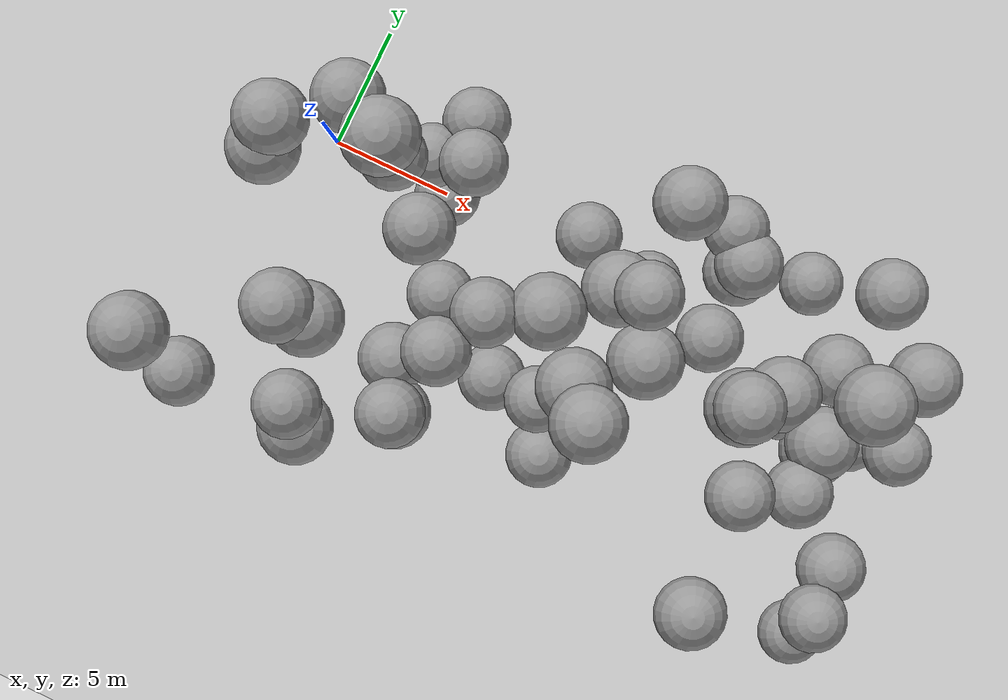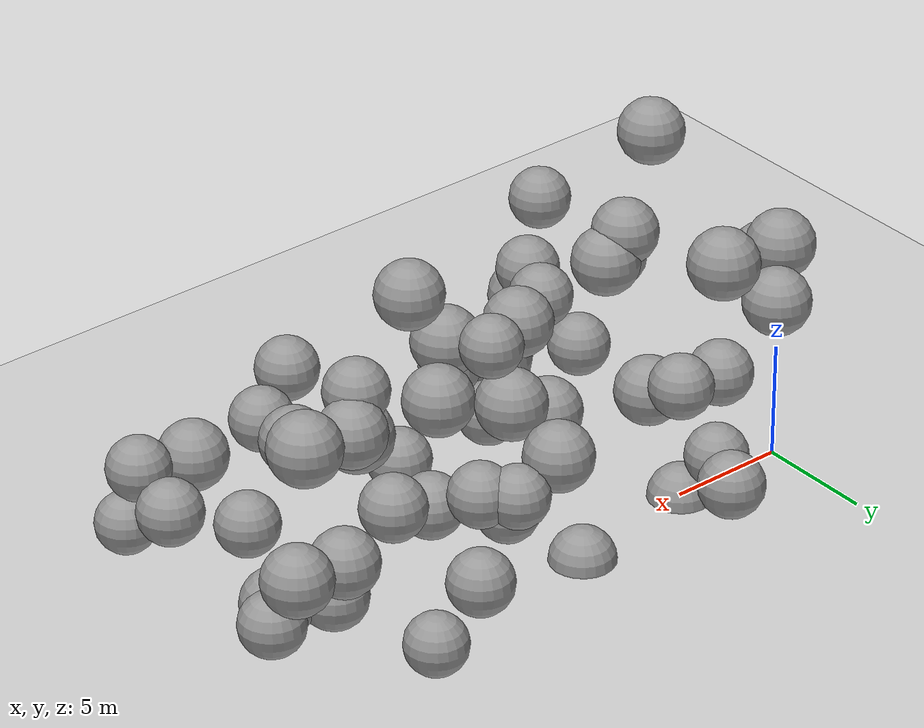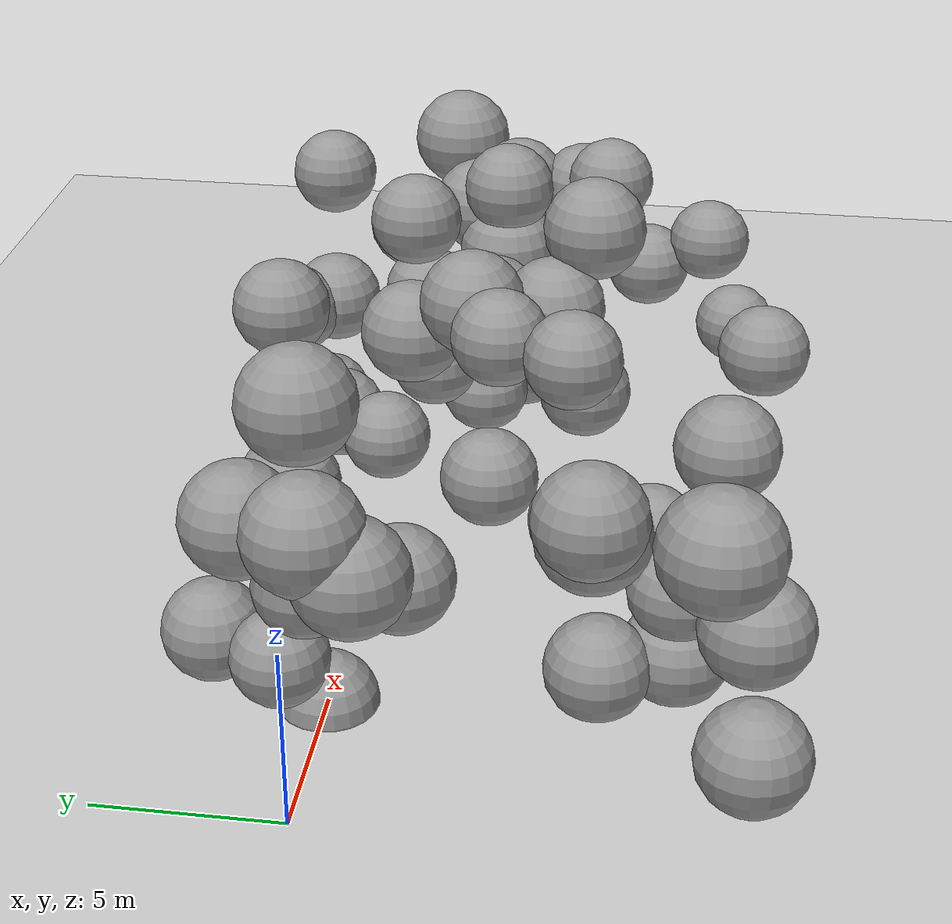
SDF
<sdf version="1.7">
 <world name="default">
  <model name="ground_plane">
   <static>1</static>
   <link name="link">
    <collision name="collision">
     <geometry><plane><normal>0 0 1</normal><size>100 100</size></plane></geometry>
     <surface>
      <contact><collide_bitmask>65535</collide_bitmask></contact>
      <friction><ode><mu>100</mu><mu2>50</mu2></ode></friction>
     </surface>
    </collision>
    <visual name="visual">
     <cast_shadows>0</cast_shadows>
     <geometry><plane><normal>0 0 1</normal><size>100 100</size></plane></geometry>
     <material>
      <script><uri>file://media/materials/scripts/gazebo.material</uri><name>Gazebo/Grey</name></script>
     </material>
    </visual>
   </link>
  </model>
  <model name="sphere_12">
   <static>1</static>
   <pose>3 0 5 0 0 0</pose>
   <link name="link">
    <inertial>
     <mass>1038.9067276165363</mass>
     <inertia>
      <ixx>761.4274268296156</ixx>
      <iyy>761.4274268296156</iyy>
      <izz>761.4274268296156</izz>
      <ixy>0</ixy>
      <ixz>0</ixz>
      <iyz>0</iyz>
     </inertia>
    </inertial>
    <collision name="collision">
     <geometry><sphere><radius>1.353617570684946</radius></sphere></geometry>
    </collision>
    <visual name="visual">
     <geometry><sphere><radius>1.353617570684946</radius></sphere></geometry>
     <material>
      <script><uri>file://media/materials/scripts/gazebo.material</uri><name>Gazebo/Grey</name></script>
     </material>
    </visual>
   </link>
  </model>
  <model name="sphere_16">
   <static>1</static>
   <pose>25 -7 4 0 0 0</pose>
   <link name="link">
    <inertial>
     <mass>1047.0550115686524</mass>
     <inertia>
      <ixx>771.4067205637532</ixx>
      <iyy>771.4067205637532</iyy>
      <izz>771.4067205637532</izz>
      <ixy>0</ixy>
      <ixz>0</ixz>
      <iyz>0</iyz>
     </inertia>
    </inertial>
    <collision name="collision">
     <geometry><sphere><radius>1.3571472265336735</radius></sphere></geometry>
    </collision>
    <visual name="visual">
     <geometry><sphere><radius>1.3571472265336735</radius></sphere></geometry>
     <material>
      <script><uri>file://media/materials/scripts/gazebo.material</uri><name>Gazebo/Grey</name></script>
     </material>
    </visual>
   </link>
  </model>
  <model name="sphere_17">
   <static>1</static>
   <pose>4 -10 9 0 0 0</pose>
   <link name="link">
    <inertial>
     <mass>874.7729072754648</mass>
     <inertia>
      <ixx>571.6889418360142</ixx>
      <iyy>571.6889418360142</iyy>
      <izz>571.6889418360142</izz>
      <ixy>0</ixy>
      <ixz>0</ixz>
      <iyz>0</iyz>
     </inertia>
    </inertial>
    <collision name="collision">
     <geometry><sphere><radius>1.278210080410224</radius></sphere></geometry>
    </collision>
    <visual name="visual">
     <geometry><sphere><radius>1.278210080410224</radius></sphere></geometry>
     <material>
      <script><uri>file://media/materials/scripts/gazebo.material</uri><name>Gazebo/Grey</name></script>
     </material>
    </visual>
   </link>
  </model>
  <model name="sphere_30">
   <static>1</static>
   <pose>5 -2 4 0 0 0</pose>
   <link name="link">
    <inertial>
     <mass>1243.6143407007764</mass>
     <inertia>
      <ixx>1027.5677231437348</ixx>
      <iyy>1027.5677231437348</iyy>
      <izz>1027.5677231437348</izz>
      <ixy>0</ixy>
      <ixz>0</ixz>
      <iyz>0</iyz>
     </inertia>
    </inertial>
    <collision name="collision">
     <geometry><sphere><radius>1.4372501767182697</radius></sphere></geometry>
    </collision>
    <visual name="visual">
     <geometry><sphere><radius>1.4372501767182697</radius></sphere></geometry>
     <material>
      <script><uri>file://media/materials/scripts/gazebo.material</uri><name>Gazebo/Grey</name></script>
     </material>
    </visual>
   </link>
  </model>
  <model name="sphere_46">
   <static>1</static>
   <pose>5 3 2 0 0 0</pose>
   <link name="link">
    <inertial>
     <mass>1108.6177397769995</mass>
     <inertia>
      <ixx>848.4715632488276</ixx>
      <iyy>848.4715632488276</iyy>
      <izz>848.4715632488276</izz>
      <ixy>0</ixy>
      <ixz>0</ixz>
      <iyz>0</iyz>
     </inertia>
    </inertial>
    <collision name="collision">
     <geometry><sphere><radius>1.3832406336512246</radius></sphere></geometry>
    </collision>
    <visual name="visual">
     <geometry><sphere><radius>1.3832406336512246</radius></sphere></geometry>
     <material>
      <script><uri>file://media/materials/scripts/gazebo.material</uri><name>Gazebo/Grey</name></script>
     </material>
    </visual>
   </link>
  </model>
  <model name="sphere_71">
   <static>1</static>
   <pose>22 0 4 0 0 0</pose>
   <link name="link">
    <inertial>
     <mass>1176.9604892467005</mass>
     <inertia>
      <ixx>937.426856159186</ixx>
      <iyy>937.426856159186</iyy>
      <izz>937.426856159186</izz>
      <ixy>0</ixy>
      <ixz>0</ixz>
      <iyz>0</iyz>
     </inertia>
    </inertial>
    <collision name="collision">
     <geometry><sphere><radius>1.41109989046505</radius></sphere></geometry>
    </collision>
    <visual name="visual">
     <geometry><sphere><radius>1.41109989046505</radius></sphere></geometry>
     <material>
      <script><uri>file://media/materials/scripts/gazebo.material</uri><name>Gazebo/Grey</name></script>
     </material>
    </visual>
   </link>
  </model>
  <model name="sphere_78">
   <static>1</static>
   <pose>7 -9 1 0 0 0</pose>
   <link name="link">
    <inertial>
     <mass>1385.7281614216654</mass>
     <inertia>
      <ixx>1230.6398953841303</ixx>
      <iyy>1230.6398953841303</iyy>
      <izz>1230.6398953841303</izz>
      <ixy>0</ixy>
      <ixz>0</ixz>
      <iyz>0</iyz>
     </inertia>
    </inertial>
    <collision name="collision">
     <geometry><sphere><radius>1.4900350276405092</radius></sphere></geometry>
    </collision>
    <visual name="visual">
     <geometry><sphere><radius>1.4900350276405092</radius></sphere></geometry>
     <material>
      <script><uri>file://media/materials/scripts/gazebo.material</uri><name>Gazebo/Grey</name></script>
     </material>
    </visual>
   </link>
  </model>
  <model name="sphere_85">
   <static>1</static>
   <pose>17 -1 4 0 0 0</pose>
   <link name="link">
    <inertial>
     <mass>1010.5993430089421</mass>
     <inertia>
      <ixx>727.1643925535061</ixx>
      <iyy>727.1643925535061</iyy>
      <izz>727.1643925535061</izz>
      <ixy>0</ixy>
      <ixz>0</ixz>
      <iyz>0</iyz>
     </inertia>
    </inertial>
    <collision name="collision">
     <geometry><sphere><radius>1.3412100552995532</radius></sphere></geometry>
    </collision>
    <visual name="visual">
     <geometry><sphere><radius>1.3412100552995532</radius></sphere></geometry>
     <material>
      <script><uri>file://media/materials/scripts/gazebo.material</uri><name>Gazebo/Grey</name></script>
     </material>
    </visual>
   </link>
  </model>
  <model name="sphere_99">
   <static>1</static>
   <pose>21 -2 1 0 0 0</pose>
   <link name="link">
    <inertial>
     <mass>1158.6614303262897</mass>
     <inertia>
      <ixx>913.2615407833617</ixx>
      <iyy>913.2615407833617</iyy>
      <izz>913.2615407833617</izz>
      <ixy>0</ixy>
      <ixz>0</ixz>
      <iyz>0</iyz>
     </inertia>
    </inertial>
    <collision name="collision">
     <geometry><sphere><radius>1.4037485274319441</radius></sphere></geometry>
    </collision>
    <visual name="visual">
     <geometry><sphere><radius>1.4037485274319441</radius></sphere></geometry>
     <material>
      <script><uri>file://media/materials/scripts/gazebo.material</uri><name>Gazebo/Grey</name></script>
     </material>
    </visual>
   </link>
  </model>
  <model name="sphere_118">
   <static>1</static>
   <pose>24 -2 1 0 0 0</pose>
   <link name="link">
    <inertial>
     <mass>1094.0116516800972</mass>
     <inertia>
      <ixx>829.9224209540441</ixx>
      <iyy>829.9224209540441</iyy>
      <izz>829.9224209540441</izz>
      <ixy>0</ixy>
      <ixz>0</ixz>
      <iyz>0</iyz>
     </inertia>
    </inertial>
    <collision name="collision">
     <geometry><sphere><radius>1.377139005952069</radius></sphere></geometry>
    </collision>
    <visual name="visual">
     <geometry><sphere><radius>1.377139005952069</radius></sphere></geometry>
     <material>
      <script><uri>file://media/materials/scripts/gazebo.material</uri><name>Gazebo/Grey</name></script>
     </material>
    </visual>
   </link>
  </model>
  <model name="sphere_121">
   <static>1</static>
   <pose>25 -2 6 0 0 0</pose>
   <link name="link">
    <inertial>
     <mass>898.4186026695969</mass>
     <inertia>
      <ixx>597.6755339659177</ixx>
      <iyy>597.6755339659177</iyy>
      <izz>597.6755339659177</izz>
      <ixy>0</ixy>
      <ixz>0</ixz>
      <iyz>0</iyz>
     </inertia>
    </inertial>
    <collision name="collision">
     <geometry><sphere><radius>1.2896247979801387</radius></sphere></geometry>
    </collision>
    <visual name="visual">
     <geometry><sphere><radius>1.2896247979801387</radius></sphere></geometry>
     <material>
      <script><uri>file://media/materials/scripts/gazebo.material</uri><name>Gazebo/Grey</name></script>
     </material>
    </visual>
   </link>
  </model>
  <model name="sphere_134">
   <static>1</static>
   <pose>20 3 1 0 0 0</pose>
   <link name="link">
    <inertial>
     <mass>929.7316282426398</mass>
     <inertia>
      <ixx>632.795808777065</ixx>
      <iyy>632.795808777065</iyy>
      <izz>632.795808777065</izz>
      <ixy>0</ixy>
      <ixz>0</ixz>
      <iyz>0</iyz>
     </inertia>
    </inertial>
    <collision name="collision">
     <geometry><sphere><radius>1.3044366687785895</radius></sphere></geometry>
    </collision>
    <visual name="visual">
     <geometry><sphere><radius>1.3044366687785895</radius></sphere></geometry>
     <material>
      <script><uri>file://media/materials/scripts/gazebo.material</uri><name>Gazebo/Grey</name></script>
     </material>
    </visual>
   </link>
  </model>
  <model name="sphere_135">
   <static>1</static>
   <pose>7 -4 6 0 0 0</pose>
   <link name="link">
    <inertial>
     <mass>859.4064308377713</mass>
     <inertia>
      <ixx>555.0497572068405</ixx>
      <iyy>555.0497572068405</iyy>
      <izz>555.0497572068405</izz>
      <ixy>0</ixy>
      <ixz>0</ixz>
      <iyz>0</iyz>
     </inertia>
    </inertial>
    <collision name="collision">
     <geometry><sphere><radius>1.2706813720038914</radius></sphere></geometry>
    </collision>
    <visual name="visual">
     <geometry><sphere><radius>1.2706813720038914</radius></sphere></geometry>
     <material>
      <script><uri>file://media/materials/scripts/gazebo.material</uri><name>Gazebo/Grey</name></script>
     </material>
    </visual>
   </link>
  </model>
  <model name="sphere_138">
   <static>1</static>
   <pose>13 -5 8 0 0 0</pose>
   <link name="link">
    <inertial>
     <mass>1238.3298237244671</mass>
     <inertia>
      <ixx>1020.3005936306399</ixx>
      <iyy>1020.3005936306399</iyy>
      <izz>1020.3005936306399</izz>
      <ixy>0</ixy>
      <ixz>0</ixz>
      <iyz>0</iyz>
     </inertia>
    </inertial>
    <collision name="collision">
     <geometry><sphere><radius>1.4352115070416207</radius></sphere></geometry>
    </collision>
    <visual name="visual">
     <geometry><sphere><radius>1.4352115070416207</radius></sphere></geometry>
     <material>
      <script><uri>file://media/materials/scripts/gazebo.material</uri><name>Gazebo/Grey</name></script>
     </material>
    </visual>
   </link>
  </model>
  <model name="sphere_139">
   <static>1</static>
   <pose>14 3 7 0 0 0</pose>
   <link name="link">
    <inertial>
     <mass>1189.4572756120035</mass>
     <inertia>
      <ixx>954.0745921217166</ixx>
      <iyy>954.0745921217166</iyy>
      <izz>954.0745921217166</izz>
      <ixy>0</ixy>
      <ixz>0</ixz>
      <iyz>0</iyz>
     </inertia>
    </inertial>
    <collision name="collision">
     <geometry><sphere><radius>1.4160765987299144</radius></sphere></geometry>
    </collision>
    <visual name="visual">
     <geometry><sphere><radius>1.4160765987299144</radius></sphere></geometry>
     <material>
      <script><uri>file://media/materials/scripts/gazebo.material</uri><name>Gazebo/Grey</name></script>
     </material>
    </visual>
   </link>
  </model>
  <model name="sphere_151">
   <static>1</static>
   <pose>14 0 3 0 0 0</pose>
   <link name="link">
    <inertial>
     <mass>909.1904258436807</mass>
     <inertia>
      <ixx>609.6665131737284</ixx>
      <iyy>609.6665131737284</iyy>
      <izz>609.6665131737284</izz>
      <ixy>0</ixy>
      <ixz>0</ixz>
      <iyz>0</iyz>
     </inertia>
    </inertial>
    <collision name="collision">
     <geometry><sphere><radius>1.2947584324578951</radius></sphere></geometry>
    </collision>
    <visual name="visual">
     <geometry><sphere><radius>1.2947584324578951</radius></sphere></geometry>
     <material>
      <script><uri>file://media/materials/scripts/gazebo.material</uri><name>Gazebo/Grey</name></script>
     </material>
    </visual>
   </link>
  </model>
  <model name="sphere_154">
   <static>1</static>
   <pose>12 -6 6 0 0 0</pose>
   <link name="link">
    <inertial>
     <mass>853.2696967661808</mass>
     <inertia>
      <ixx>548.4597847716402</ixx>
      <iyy>548.4597847716402</iyy>
      <izz>548.4597847716402</izz>
      <ixy>0</ixy>
      <ixz>0</ixz>
      <iyz>0</iyz>
     </inertia>
    </inertial>
    <collision name="collision">
     <geometry><sphere><radius>1.2676496406651856</radius></sphere></geometry>
    </collision>
    <visual name="visual">
     <geometry><sphere><radius>1.2676496406651856</radius></sphere></geometry>
     <material>
      <script><uri>file://media/materials/scripts/gazebo.material</uri><name>Gazebo/Grey</name></script>
     </material>
    </visual>
   </link>
  </model>
  <model name="sphere_157">
   <static>1</static>
   <pose>22 -3 8 0 0 0</pose>
   <link name="link">
    <inertial>
     <mass>1066.9556174361703</mass>
     <inertia>
      <ixx>795.9971429420287</ixx>
      <iyy>795.9971429420287</iyy>
      <izz>795.9971429420287</izz>
      <ixy>0</ixy>
      <ixz>0</ixz>
      <iyz>0</iyz>
     </inertia>
    </inertial>
    <collision name="collision">
     <geometry><sphere><radius>1.3656914222408143</radius></sphere></geometry>
    </collision>
    <visual name="visual">
     <geometry><sphere><radius>1.3656914222408143</radius></sphere></geometry>
     <material>
      <script><uri>file://media/materials/scripts/gazebo.material</uri><name>Gazebo/Grey</name></script>
     </material>
    </visual>
   </link>
  </model>
  <model name="sphere_158">
   <static>1</static>
   <pose>14 -6 10 0 0 0</pose>
   <link name="link">
    <inertial>
     <mass>1224.1899395016944</mass>
     <inertia>
      <ixx>1000.9574015751906</ixx>
      <iyy>1000.9574015751906</iyy>
      <izz>1000.9574015751906</izz>
      <ixy>0</ixy>
      <ixz>0</ixz>
      <iyz>0</iyz>
     </inertia>
    </inertial>
    <collision name="collision">
     <geometry><sphere><radius>1.4297279222738366</radius></sphere></geometry>
    </collision>
    <visual name="visual">
     <geometry><sphere><radius>1.4297279222738366</radius></sphere></geometry>
     <material>
      <script><uri>file://media/materials/scripts/gazebo.material</uri><name>Gazebo/Grey</name></script>
     </material>
    </visual>
   </link>
  </model>
  <model name="sphere_161">
   <static>1</static>
   <pose>-1 -11 4 0 0 0</pose>
   <link name="link">
    <inertial>
     <mass>1087.1521343801471</mass>
     <inertia>
      <ixx>821.267789343555</ixx>
      <iyy>821.267789343555</iyy>
      <izz>821.267789343555</izz>
      <ixy>0</ixy>
      <ixz>0</ixz>
      <iyz>0</iyz>
     </inertia>
    </inertial>
    <collision name="collision">
     <geometry><sphere><radius>1.3742547218368575</radius></sphere></geometry>
    </collision>
    <visual name="visual">
     <geometry><sphere><radius>1.3742547218368575</radius></sphere></geometry>
     <material>
      <script><uri>file://media/materials/scripts/gazebo.material</uri><name>Gazebo/Grey</name></script>
     </material>
    </visual>
   </link>
  </model>
  <model name="sphere_162">
   <static>1</static>
   <pose>-1 -1 9 0 0 0</pose>
   <link name="link">
    <inertial>
     <mass>1236.3483206619317</mass>
     <inertia>
      <ixx>1017.5810028699109</ixx>
      <iyy>1017.5810028699109</iyy>
      <izz>1017.5810028699109</izz>
      <ixy>0</ixy>
      <ixz>0</ixz>
      <iyz>0</iyz>
     </inertia>
    </inertial>
    <collision name="collision">
     <geometry><sphere><radius>1.4344455844901174</radius></sphere></geometry>
    </collision>
    <visual name="visual">
     <geometry><sphere><radius>1.4344455844901174</radius></sphere></geometry>
     <material>
      <script><uri>file://media/materials/scripts/gazebo.material</uri><name>Gazebo/Grey</name></script>
     </material>
    </visual>
   </link>
  </model>
  <model name="sphere_164">
   <static>1</static>
   <pose>11 1 0 0 0 0</pose>
   <link name="link">
    <inertial>
     <mass>1111.1351162082958</mass>
     <inertia>
      <ixx>851.6850824144057</ixx>
      <iyy>851.6850824144057</iyy>
      <izz>851.6850824144057</izz>
      <ixy>0</ixy>
      <ixz>0</ixz>
      <iyz>0</iyz>
     </inertia>
    </inertial>
    <collision name="collision">
     <geometry><sphere><radius>1.3842868328640963</radius></sphere></geometry>
    </collision>
    <visual name="visual">
     <geometry><sphere><radius>1.3842868328640963</radius></sphere></geometry>
     <material>
      <script><uri>file://media/materials/scripts/gazebo.material</uri><name>Gazebo/Grey</name></script>
     </material>
    </visual>
   </link>
  </model>
  <model name="sphere_176">
   <static>1</static>
   <pose>25 -9 5 0 0 0</pose>
   <link name="link">
    <inertial>
     <mass>959.6676110586765</mass>
     <inertia>
      <ixx>667.117470863385</ixx>
      <iyy>667.117470863385</iyy>
      <izz>667.117470863385</izz>
      <ixy>0</ixy>
      <ixz>0</ixz>
      <iyz>0</iyz>
     </inertia>
    </inertial>
    <collision name="collision">
     <geometry><sphere><radius>1.3182893474725712</radius></sphere></geometry>
    </collision>
    <visual name="visual">
     <geometry><sphere><radius>1.3182893474725712</radius></sphere></geometry>
     <material>
      <script><uri>file://media/materials/scripts/gazebo.material</uri><name>Gazebo/Grey</name></script>
     </material>
    </visual>
   </link>
  </model>
  <model name="sphere_193">
   <static>1</static>
   <pose>2 -7 8 0 0 0</pose>
   <link name="link">
    <inertial>
     <mass>1177.5823542222354</mass>
     <inertia>
      <ixx>938.2525077690659</ixx>
      <iyy>938.2525077690659</iyy>
      <izz>938.2525077690659</izz>
      <ixy>0</ixy>
      <ixz>0</ixz>
      <iyz>0</iyz>
     </inertia>
    </inertial>
    <collision name="collision">
     <geometry><sphere><radius>1.4113483720702833</radius></sphere></geometry>
    </collision>
    <visual name="visual">
     <geometry><sphere><radius>1.4113483720702833</radius></sphere></geometry>
     <material>
      <script><uri>file://media/materials/scripts/gazebo.material</uri><name>Gazebo/Grey</name></script>
     </material>
    </visual>
   </link>
  </model>
  <model name="sphere_196">
   <static>1</static>
   <pose>22 3 8 0 0 0</pose>
   <link name="link">
    <inertial>
     <mass>959.2016523602506</mass>
     <inertia>
      <ixx>666.5777025935565</ixx>
      <iyy>666.5777025935565</iyy>
      <izz>666.5777025935565</izz>
      <ixy>0</ixy>
      <ixz>0</ixz>
      <iyz>0</iyz>
     </inertia>
    </inertial>
    <collision name="collision">
     <geometry><sphere><radius>1.3180759514224198</radius></sphere></geometry>
    </collision>
    <visual name="visual">
     <geometry><sphere><radius>1.3180759514224198</radius></sphere></geometry>
     <material>
      <script><uri>file://media/materials/scripts/gazebo.material</uri><name>Gazebo/Grey</name></script>
     </material>
    </visual>
   </link>
  </model>
  <model name="sphere_203">
   <static>1</static>
   <pose>3 -7 7 0 0 0</pose>
   <link name="link">
    <inertial>
     <mass>1289.251268892252</mass>
     <inertia>
      <ixx>1091.181173409614</ixx>
      <iyy>1091.181173409614</iyy>
      <izz>1091.181173409614</izz>
      <ixy>0</ixy>
      <ixz>0</ixz>
      <iyz>0</iyz>
     </inertia>
    </inertial>
    <collision name="collision">
     <geometry><sphere><radius>1.4546203289703061</radius></sphere></geometry>
    </collision>
    <visual name="visual">
     <geometry><sphere><radius>1.4546203289703061</radius></sphere></geometry>
     <material>
      <script><uri>file://media/materials/scripts/gazebo.material</uri><name>Gazebo/Grey</name></script>
     </material>
    </visual>
   </link>
  </model>
  <model name="sphere_206">
   <static>1</static>
   <pose>4 -11 4 0 0 0</pose>
   <link name="link">
    <inertial>
     <mass>1401.7946286433241</mass>
     <inertia>
      <ixx>1254.5122439337508</ixx>
      <iyy>1254.5122439337508</iyy>
      <izz>1254.5122439337508</izz>
      <ixy>0</ixy>
      <ixz>0</ixz>
      <iyz>0</iyz>
     </inertia>
    </inertial>
    <collision name="collision">
     <geometry><sphere><radius>1.4957715230743756</radius></sphere></geometry>
    </collision>
    <visual name="visual">
     <geometry><sphere><radius>1.4957715230743756</radius></sphere></geometry>
     <material>
      <script><uri>file://media/materials/scripts/gazebo.material</uri><name>Gazebo/Grey</name></script>
     </material>
    </visual>
   </link>
  </model>
  <model name="sphere_209">
   <static>1</static>
   <pose>16 3 6 0 0 0</pose>
   <link name="link">
    <inertial>
     <mass>871.9847712597559</mass>
     <inertia>
      <ixx>568.6552926267929</ixx>
      <iyy>568.6552926267929</iyy>
      <izz>568.6552926267929</izz>
      <ixy>0</ixy>
      <ixz>0</ixz>
      <iyz>0</iyz>
     </inertia>
    </inertial>
    <collision name="collision">
     <geometry><sphere><radius>1.2768506355618507</radius></sphere></geometry>
    </collision>
    <visual name="visual">
     <geometry><sphere><radius>1.2768506355618507</radius></sphere></geometry>
     <material>
      <script><uri>file://media/materials/scripts/gazebo.material</uri><name>Gazebo/Grey</name></script>
     </material>
    </visual>
   </link>
  </model>
  <model name="sphere_211">
   <static>1</static>
   <pose>19 -3 9 0 0 0</pose>
   <link name="link">
    <inertial>
     <mass>1003.8476877417102</mass>
     <inertia>
      <ixx>719.0856521822483</ixx>
      <iyy>719.0856521822483</iyy>
      <izz>719.0856521822483</izz>
      <ixy>0</ixy>
      <ixz>0</ixz>
      <iyz>0</iyz>
     </inertia>
    </inertial>
    <collision name="collision">
     <geometry><sphere><radius>1.338216574565059</radius></sphere></geometry>
    </collision>
    <visual name="visual">
     <geometry><sphere><radius>1.338216574565059</radius></sphere></geometry>
     <material>
      <script><uri>file://media/materials/scripts/gazebo.material</uri><name>Gazebo/Grey</name></script>
     </material>
    </visual>
   </link>
  </model>
  <model name="sphere_218">
   <static>1</static>
   <pose>10 -6 3 0 0 0</pose>
   <link name="link">
    <inertial>
     <mass>990.214401895641</mass>
     <inertia>
      <ixx>702.8829079095309</ixx>
      <iyy>702.8829079095309</iyy>
      <izz>702.8829079095309</izz>
      <ixy>0</ixy>
      <ixz>0</ixz>
      <iyz>0</iyz>
     </inertia>
    </inertial>
    <collision name="collision">
     <geometry><sphere><radius>1.3321308206380553</radius></sphere></geometry>
    </collision>
    <visual name="visual">
     <geometry><sphere><radius>1.3321308206380553</radius></sphere></geometry>
     <material>
      <script><uri>file://media/materials/scripts/gazebo.material</uri><name>Gazebo/Grey</name></script>
     </material>
    </visual>
   </link>
  </model>
  <model name="sphere_237">
   <static>1</static>
   <pose>13 -1 7 0 0 0</pose>
   <link name="link">
    <inertial>
     <mass>1292.9603844880455</mass>
     <inertia>
      <ixx>1096.418317996765</ixx>
      <iyy>1096.418317996765</iyy>
      <izz>1096.418317996765</izz>
      <ixy>0</ixy>
      <ixz>0</ixz>
      <iyz>0</iyz>
     </inertia>
    </inertial>
    <collision name="collision">
     <geometry><sphere><radius>1.4560139515766564</radius></sphere></geometry>
    </collision>
    <visual name="visual">
     <geometry><sphere><radius>1.4560139515766564</radius></sphere></geometry>
     <material>
      <script><uri>file://media/materials/scripts/gazebo.material</uri><name>Gazebo/Grey</name></script>
     </material>
    </visual>
   </link>
  </model>
  <model name="sphere_239">
   <static>1</static>
   <pose>11 -3 9 0 0 0</pose>
   <link name="link">
    <inertial>
     <mass>1203.2749531655745</mass>
     <inertia>
      <ixx>972.6181723659942</ixx>
      <iyy>972.6181723659942</iyy>
      <izz>972.6181723659942</izz>
      <ixy>0</ixy>
      <ixz>0</ixz>
      <iyz>0</iyz>
     </inertia>
    </inertial>
    <collision name="collision">
     <geometry><sphere><radius>1.4215389238047258</radius></sphere></geometry>
    </collision>
    <visual name="visual">
     <geometry><sphere><radius>1.4215389238047258</radius></sphere></geometry>
     <material>
      <script><uri>file://media/materials/scripts/gazebo.material</uri><name>Gazebo/Grey</name></script>
     </material>
    </visual>
   </link>
  </model>
  <model name="sphere_242">
   <static>1</static>
   <pose>17 2 2 0 0 0</pose>
   <link name="link">
    <inertial>
     <mass>1089.3218234125468</mass>
     <inertia>
      <ixx>824.0013547221056</ixx>
      <iyy>824.0013547221056</iyy>
      <izz>824.0013547221056</izz>
      <ixy>0</ixy>
      <ixz>0</ixz>
      <iyz>0</iyz>
     </inertia>
    </inertial>
    <collision name="collision">
     <geometry><sphere><radius>1.3751683394486007</radius></sphere></geometry>
    </collision>
    <visual name="visual">
     <geometry><sphere><radius>1.3751683394486007</radius></sphere></geometry>
     <material>
      <script><uri>file://media/materials/scripts/gazebo.material</uri><name>Gazebo/Grey</name></script>
     </material>
    </visual>
   </link>
  </model>
  <model name="sphere_249">
   <static>1</static>
   <pose>5 0 0 0 0 0</pose>
   <link name="link">
    <inertial>
     <mass>1061.323884189694</mass>
     <inertia>
      <ixx>789.0069245852707</ixx>
      <iyy>789.0069245852707</iyy>
      <izz>789.0069245852707</izz>
      <ixy>0</ixy>
      <ixz>0</ixz>
      <iyz>0</iyz>
     </inertia>
    </inertial>
    <collision name="collision">
     <geometry><sphere><radius>1.36328432997895</radius></sphere></geometry>
    </collision>
    <visual name="visual">
     <geometry><sphere><radius>1.36328432997895</radius></sphere></geometry>
     <material>
      <script><uri>file://media/materials/scripts/gazebo.material</uri><name>Gazebo/Grey</name></script>
     </material>
    </visual>
   </link>
  </model>
  <model name="sphere_259">
   <static>1</static>
   <pose>22 -5 8 0 0 0</pose>
   <link name="link">
    <inertial>
     <mass>892.8680579844778</mass>
     <inertia>
      <ixx>591.5340237151945</ixx>
      <iyy>591.5340237151945</iyy>
      <izz>591.5340237151945</izz>
      <ixy>0</ixy>
      <ixz>0</ixz>
      <iyz>0</iyz>
     </inertia>
    </inertial>
    <collision name="collision">
     <geometry><sphere><radius>1.2869634876465952</radius></sphere></geometry>
    </collision>
    <visual name="visual">
     <geometry><sphere><radius>1.2869634876465952</radius></sphere></geometry>
     <material>
      <script><uri>file://media/materials/scripts/gazebo.material</uri><name>Gazebo/Grey</name></script>
     </material>
    </visual>
   </link>
  </model>
  <model name="sphere_271">
   <static>1</static>
   <pose>23 -3 1 0 0 0</pose>
   <link name="link">
    <inertial>
     <mass>1405.937284970949</mass>
     <inertia>
      <ixx>1260.6973283891834</ixx>
      <iyy>1260.6973283891834</iyy>
      <izz>1260.6973283891834</izz>
      <ixy>0</ixy>
      <ixz>0</ixz>
      <iyz>0</iyz>
     </inertia>
    </inertial>
    <collision name="collision">
     <geometry><sphere><radius>1.4972435345467714</radius></sphere></geometry>
    </collision>
    <visual name="visual">
     <geometry><sphere><radius>1.4972435345467714</radius></sphere></geometry>
     <material>
      <script><uri>file://media/materials/scripts/gazebo.material</uri><name>Gazebo/Grey</name></script>
     </material>
    </visual>
   </link>
  </model>
  <model name="sphere_274">
   <static>1</static>
   <pose>-2 -10 10 0 0 0</pose>
   <link name="link">
    <inertial>
     <mass>1214.2871870644685</mass>
     <inertia>
      <ixx>987.4988666693034</ixx>
      <iyy>987.4988666693034</iyy>
      <izz>987.4988666693034</izz>
      <ixy>0</ixy>
      <ixz>0</ixz>
      <iyz>0</iyz>
     </inertia>
    </inertial>
    <collision name="collision">
     <geometry><sphere><radius>1.4258623482253974</radius></sphere></geometry>
    </collision>
    <visual name="visual">
     <geometry><sphere><radius>1.4258623482253974</radius></sphere></geometry>
     <material>
      <script><uri>file://media/materials/scripts/gazebo.material</uri><name>Gazebo/Grey</name></script>
     </material>
    </visual>
   </link>
  </model>
  <model name="sphere_275">
   <static>1</static>
   <pose>25 1 5 0 0 0</pose>
   <link name="link">
    <inertial>
     <mass>1242.75740859157</mass>
     <inertia>
      <ixx>1026.3878912638909</ixx>
      <iyy>1026.3878912638909</iyy>
      <izz>1026.3878912638909</izz>
      <ixy>0</ixy>
      <ixz>0</ixz>
      <iyz>0</iyz>
     </inertia>
    </inertial>
    <collision name="collision">
     <geometry><sphere><radius>1.4369199808840174</radius></sphere></geometry>
    </collision>
    <visual name="visual">
     <geometry><sphere><radius>1.4369199808840174</radius></sphere></geometry>
     <material>
      <script><uri>file://media/materials/scripts/gazebo.material</uri><name>Gazebo/Grey</name></script>
     </material>
    </visual>
   </link>
  </model>
  <model name="sphere_276">
   <static>1</static>
   <pose>4 1 2 0 0 0</pose>
   <link name="link">
    <inertial>
     <mass>970.1416435845563</mass>
     <inertia>
      <ixx>679.2966879590306</ixx>
      <iyy>679.2966879590306</iyy>
      <izz>679.2966879590306</izz>
      <ixy>0</ixy>
      <ixz>0</ixz>
      <iyz>0</iyz>
     </inertia>
    </inertial>
    <collision name="collision">
     <geometry><sphere><radius>1.3230680416388794</radius></sphere></geometry>
    </collision>
    <visual name="visual">
     <geometry><sphere><radius>1.3230680416388794</radius></sphere></geometry>
     <material>
      <script><uri>file://media/materials/scripts/gazebo.material</uri><name>Gazebo/Grey</name></script>
     </material>
    </visual>
   </link>
  </model>
  <model name="sphere_303">
   <static>1</static>
   <pose>6 1 6 0 0 0</pose>
   <link name="link">
    <inertial>
     <mass>973.7605727552806</mass>
     <inertia>
      <ixx>683.5252493655473</ixx>
      <iyy>683.5252493655473</iyy>
      <izz>683.5252493655473</izz>
      <ixy>0</ixy>
      <ixz>0</ixz>
      <iyz>0</iyz>
     </inertia>
    </inertial>
    <collision name="collision">
     <geometry><sphere><radius>1.324711151585386</radius></sphere></geometry>
    </collision>
    <visual name="visual">
     <geometry><sphere><radius>1.324711151585386</radius></sphere></geometry>
     <material>
      <script><uri>file://media/materials/scripts/gazebo.material</uri><name>Gazebo/Grey</name></script>
     </material>
    </visual>
   </link>
  </model>
  <model name="sphere_316">
   <static>1</static>
   <pose>6 -7 1 0 0 0</pose>
   <link name="link">
    <inertial>
     <mass>1279.1331147806518</mass>
     <inertia>
      <ixx>1076.9457389869824</ixx>
      <iyy>1076.9457389869824</iyy>
      <izz>1076.9457389869824</izz>
      <ixy>0</ixy>
      <ixz>0</ixz>
      <iyz>0</iyz>
     </inertia>
    </inertial>
    <collision name="collision">
     <geometry><sphere><radius>1.4508050022832655</radius></sphere></geometry>
    </collision>
    <visual name="visual">
     <geometry><sphere><radius>1.4508050022832655</radius></sphere></geometry>
     <material>
      <script><uri>file://media/materials/scripts/gazebo.material</uri><name>Gazebo/Grey</name></script>
     </material>
    </visual>
   </link>
  </model>
  <model name="sphere_318">
   <static>1</static>
   <pose>17 2 6 0 0 0</pose>
   <link name="link">
    <inertial>
     <mass>953.515564246576</mass>
     <inertia>
      <ixx>660.0050053861796</ixx>
      <iyy>660.0050053861796</iyy>
      <izz>660.0050053861796</izz>
      <ixy>0</ixy>
      <ixz>0</ixz>
      <iyz>0</iyz>
     </inertia>
    </inertial>
    <collision name="collision">
     <geometry><sphere><radius>1.3154662970596918</radius></sphere></geometry>
    </collision>
    <visual name="visual">
     <geometry><sphere><radius>1.3154662970596918</radius></sphere></geometry>
     <material>
      <script><uri>file://media/materials/scripts/gazebo.material</uri><name>Gazebo/Grey</name></script>
     </material>
    </visual>
   </link>
  </model>
  <model name="sphere_319">
   <static>1</static>
   <pose>20 -2 8 0 0 0</pose>
   <link name="link">
    <inertial>
     <mass>1173.83778327264</mass>
     <inertia>
      <ixx>933.2852292030534</ixx>
      <iyy>933.2852292030534</iyy>
      <izz>933.2852292030534</izz>
      <ixy>0</ixy>
      <ixz>0</ixz>
      <iyz>0</iyz>
     </inertia>
    </inertial>
    <collision name="collision">
     <geometry><sphere><radius>1.4098508106219212</radius></sphere></geometry>
    </collision>
    <visual name="visual">
     <geometry><sphere><radius>1.4098508106219212</radius></sphere></geometry>
     <material>
      <script><uri>file://media/materials/scripts/gazebo.material</uri><name>Gazebo/Grey</name></script>
     </material>
    </visual>
   </link>
  </model>
  <model name="sphere_337">
   <static>1</static>
   <pose>25 -10 2 0 0 0</pose>
   <link name="link">
    <inertial>
     <mass>897.2962614861236</mass>
     <inertia>
      <ixx>596.4316511091962</ixx>
      <iyy>596.4316511091962</iyy>
      <izz>596.4316511091962</izz>
      <ixy>0</ixy>
      <ixz>0</ixz>
      <iyz>0</iyz>
     </inertia>
    </inertial>
    <collision name="collision">
     <geometry><sphere><radius>1.2890875568941575</radius></sphere></geometry>
    </collision>
    <visual name="visual">
     <geometry><sphere><radius>1.2890875568941575</radius></sphere></geometry>
     <material>
      <script><uri>file://media/materials/scripts/gazebo.material</uri><name>Gazebo/Grey</name></script>
     </material>
    </visual>
   </link>
  </model>
  <model name="sphere_341">
   <static>1</static>
   <pose>19 -3 7 0 0 0</pose>
   <link name="link">
    <inertial>
     <mass>1388.6213758927588</mass>
     <inertia>
      <ixx>1234.925226652699</ixx>
      <iyy>1234.925226652699</iyy>
      <izz>1234.925226652699</izz>
      <ixy>0</ixy>
      <ixz>0</ixz>
      <iyz>0</iyz>
     </inertia>
    </inertial>
    <collision name="collision">
     <geometry><sphere><radius>1.4910713045098878</radius></sphere></geometry>
    </collision>
    <visual name="visual">
     <geometry><sphere><radius>1.4910713045098878</radius></sphere></geometry>
     <material>
      <script><uri>file://media/materials/scripts/gazebo.material</uri><name>Gazebo/Grey</name></script>
     </material>
    </visual>
   </link>
  </model>
  <model name="sphere_344">
   <static>1</static>
   <pose>20 -6 9 0 0 0</pose>
   <link name="link">
    <inertial>
     <mass>868.5565238117322</mass>
     <inertia>
      <ixx>564.9340214053295</ixx>
      <iyy>564.9340214053295</iyy>
      <izz>564.9340214053295</izz>
      <ixy>0</ixy>
      <ixz>0</ixz>
      <iyz>0</iyz>
     </inertia>
    </inertial>
    <collision name="collision">
     <geometry><sphere><radius>1.27517510588286</radius></sphere></geometry>
    </collision>
    <visual name="visual">
     <geometry><sphere><radius>1.27517510588286</radius></sphere></geometry>
     <material>
      <script><uri>file://media/materials/scripts/gazebo.material</uri><name>Gazebo/Grey</name></script>
     </material>
    </visual>
   </link>
  </model>
  <model name="sphere_350">
   <static>1</static>
   <pose>8 -6 9 0 0 0</pose>
   <link name="link">
    <inertial>
     <mass>892.4482858053469</mass>
     <inertia>
      <ixx>591.0705909071529</ixx>
      <iyy>591.0705909071529</iyy>
      <izz>591.0705909071529</izz>
      <ixy>0</ixy>
      <ixz>0</ixz>
      <iyz>0</iyz>
     </inertia>
    </inertial>
    <collision name="collision">
     <geometry><sphere><radius>1.2867617720828117</radius></sphere></geometry>
    </collision>
    <visual name="visual">
     <geometry><sphere><radius>1.2867617720828117</radius></sphere></geometry>
     <material>
      <script><uri>file://media/materials/scripts/gazebo.material</uri><name>Gazebo/Grey</name></script>
     </material>
    </visual>
   </link>
  </model>
  <model name="sphere_353">
   <static>1</static>
   <pose>21 -11 3 0 0 0</pose>
   <link name="link">
    <inertial>
     <mass>1313.251473687971</mass>
     <inertia>
      <ixx>1125.2458325656826</ixx>
      <iyy>1125.2458325656826</iyy>
      <izz>1125.2458325656826</izz>
      <ixy>0</ixy>
      <ixz>0</ixz>
      <iyz>0</iyz>
     </inertia>
    </inertial>
    <collision name="collision">
     <geometry><sphere><radius>1.4635911087663223</radius></sphere></geometry>
    </collision>
    <visual name="visual">
     <geometry><sphere><radius>1.4635911087663223</radius></sphere></geometry>
     <material>
      <script><uri>file://media/materials/scripts/gazebo.material</uri><name>Gazebo/Grey</name></script>
     </material>
    </visual>
   </link>
  </model>
  <model name="sphere_354">
   <static>1</static>
   <pose>7 -9 3 0 0 0</pose>
   <link name="link">
    <inertial>
     <mass>1164.4381206853175</mass>
     <inertia>
      <ixx>920.8628291409277</ixx>
      <iyy>920.8628291409277</iyy>
      <izz>920.8628291409277</izz>
      <ixy>0</ixy>
      <ixz>0</ixz>
      <iyz>0</iyz>
     </inertia>
    </inertial>
    <collision name="collision">
     <geometry><sphere><radius>1.4060775314897407</radius></sphere></geometry>
    </collision>
    <visual name="visual">
     <geometry><sphere><radius>1.4060775314897407</radius></sphere></geometry>
     <material>
      <script><uri>file://media/materials/scripts/gazebo.material</uri><name>Gazebo/Grey</name></script>
     </material>
    </visual>
   </link>
  </model>
  <model name="sphere_365">
   <static>1</static>
   <pose>14 -1 10 0 0 0</pose>
   <link name="link">
    <inertial>
     <mass>846.8652754081743</mass>
     <inertia>
      <ixx>541.615969573423</ixx>
      <iyy>541.615969573423</iyy>
      <izz>541.615969573423</izz>
      <ixy>0</ixy>
      <ixz>0</ixz>
      <iyz>0</iyz>
     </inertia>
    </inertial>
    <collision name="collision">
     <geometry><sphere><radius>1.2644701225009725</radius></sphere></geometry>
    </collision>
    <visual name="visual">
     <geometry><sphere><radius>1.2644701225009725</radius></sphere></geometry>
     <material>
      <script><uri>file://media/materials/scripts/gazebo.material</uri><name>Gazebo/Grey</name></script>
     </material>
    </visual>
   </link>
  </model>
  <model name="sphere_367">
   <static>1</static>
   <pose>-1 -2 8 0 0 0</pose>
   <link name="link">
    <inertial>
     <mass>1162.915115304872</mass>
     <inertia>
      <ixx>918.8563284937342</ixx>
      <iyy>918.8563284937342</iyy>
      <izz>918.8563284937342</izz>
      <ixy>0</ixy>
      <ixz>0</ixz>
      <iyz>0</iyz>
     </inertia>
    </inertial>
    <collision name="collision">
     <geometry><sphere><radius>1.4054642463020832</radius></sphere></geometry>
    </collision>
    <visual name="visual">
     <geometry><sphere><radius>1.4054642463020832</radius></sphere></geometry>
     <material>
      <script><uri>file://media/materials/scripts/gazebo.material</uri><name>Gazebo/Grey</name></script>
     </material>
    </visual>
   </link>
  </model>
  <model name="sphere_378">
   <static>1</static>
   <pose>13 -8 1 0 0 0</pose>
   <link name="link">
    <inertial>
     <mass>1042.643570780076</mass>
     <inertia>
      <ixx>765.9975274591845</ixx>
      <iyy>765.9975274591845</iyy>
      <izz>765.9975274591845</izz>
      <ixy>0</ixy>
      <ixz>0</ixz>
      <iyz>0</iyz>
     </inertia>
    </inertial>
    <collision name="collision">
     <geometry><sphere><radius>1.3552385708640773</radius></sphere></geometry>
    </collision>
    <visual name="visual">
     <geometry><sphere><radius>1.3552385708640773</radius></sphere></geometry>
     <material>
      <script><uri>file://media/materials/scripts/gazebo.material</uri><name>Gazebo/Grey</name></script>
     </material>
    </visual>
   </link>
  </model>
  <model name="sphere_384">
   <static>1</static>
   <pose>3 0 10 0 0 0</pose>
   <link name="link">
    <inertial>
     <mass>1364.3725282199669</mass>
     <inertia>
      <ixx>1199.193305948286</ixx>
      <iyy>1199.193305948286</iyy>
      <izz>1199.193305948286</izz>
      <ixy>0</ixy>
      <ixz>0</ixz>
      <iyz>0</iyz>
     </inertia>
    </inertial>
    <collision name="collision">
     <geometry><sphere><radius>1.4823409934462932</radius></sphere></geometry>
    </collision>
    <visual name="visual">
     <geometry><sphere><radius>1.4823409934462932</radius></sphere></geometry>
     <material>
      <script><uri>file://media/materials/scripts/gazebo.material</uri><name>Gazebo/Grey</name></script>
     </material>
    </visual>
   </link>
  </model>
  <model name="sphere_386">
   <static>1</static>
   <pose>1 1 8 0 0 0</pose>
   <link name="link">
    <inertial>
     <mass>1183.5565138189193</mass>
     <inertia>
      <ixx>946.1992185760445</ixx>
      <iyy>946.1992185760445</iyy>
      <izz>946.1992185760445</izz>
      <ixy>0</ixy>
      <ixz>0</ixz>
      <iyz>0</iyz>
     </inertia>
    </inertial>
    <collision name="collision">
     <geometry><sphere><radius>1.4137310509813652</radius></sphere></geometry>
    </collision>
    <visual name="visual">
     <geometry><sphere><radius>1.4137310509813652</radius></sphere></geometry>
     <material>
      <script><uri>file://media/materials/scripts/gazebo.material</uri><name>Gazebo/Grey</name></script>
     </material>
    </visual>
   </link>
  </model>
  <model name="sphere_393">
   <static>1</static>
   <pose>15 -3 7 0 0 0</pose>
   <link name="link">
    <inertial>
     <mass>1300.2605880425835</mass>
     <inertia>
      <ixx>1106.755231056348</ixx>
      <iyy>1106.755231056348</iyy>
      <izz>1106.755231056348</izz>
      <ixy>0</ixy>
      <ixz>0</ixz>
      <iyz>0</iyz>
     </inertia>
    </inertial>
    <collision name="collision">
     <geometry><sphere><radius>1.4587490846623943</radius></sphere></geometry>
    </collision>
    <visual name="visual">
     <geometry><sphere><radius>1.4587490846623943</radius></sphere></geometry>
     <material>
      <script><uri>file://media/materials/scripts/gazebo.material</uri><name>Gazebo/Grey</name></script>
     </material>
    </visual>
   </link>
  </model>
  <model name="sphere_398">
   <static>1</static>
   <pose>9 -4 9 0 0 0</pose>
   <link name="link">
    <inertial>
     <mass>899.0803755986225</mass>
     <inertia>
      <ixx>598.4094579852343</ixx>
      <iyy>598.4094579852343</iyy>
      <izz>598.4094579852343</izz>
      <ixy>0</ixy>
      <ixz>0</ixz>
      <iyz>0</iyz>
     </inertia>
    </inertial>
    <collision name="collision">
     <geometry><sphere><radius>1.2899413650815283</radius></sphere></geometry>
    </collision>
    <visual name="visual">
     <geometry><sphere><radius>1.2899413650815283</radius></sphere></geometry>
     <material>
      <script><uri>file://media/materials/scripts/gazebo.material</uri><name>Gazebo/Grey</name></script>
     </material>
    </visual>
   </link>
  </model>
  <model name="sphere_400">
   <static>1</static>
   <pose>23 -1 9 0 0 0</pose>
   <link name="link">
    <inertial>
     <mass>1386.2108274276293</mass>
     <inertia>
      <ixx>1231.3543897818286</ixx>
      <iyy>1231.3543897818286</iyy>
      <izz>1231.3543897818286</izz>
      <ixy>0</ixy>
      <ixz>0</ixz>
      <iyz>0</iyz>
     </inertia>
    </inertial>
    <collision name="collision">
     <geometry><sphere><radius>1.4902080066780332</radius></sphere></geometry>
    </collision>
    <visual name="visual">
     <geometry><sphere><radius>1.4902080066780332</radius></sphere></geometry>
     <material>
      <script><uri>file://media/materials/scripts/gazebo.material</uri><name>Gazebo/Grey</name></script>
     </material>
    </visual>
   </link>
  </model>
 </world>
</sdf>
